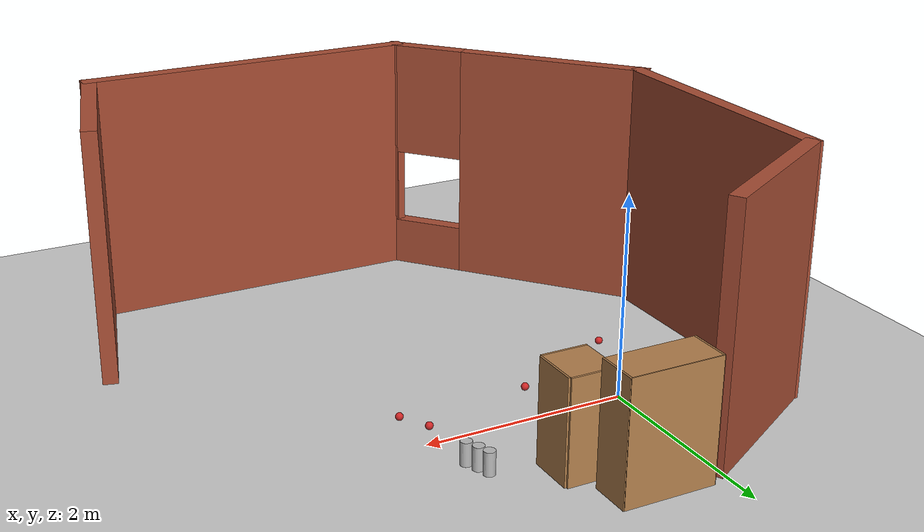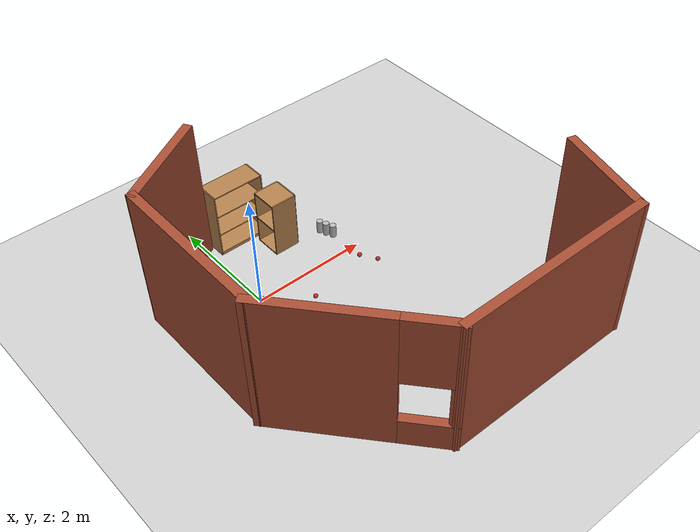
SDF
<sdf version="1.7">
 <world name="default">
  <light name="sun" type="directional">
   <pose>0 0 10 0 -0 0</pose>
   <diffuse>0.8 0.8 0.8 1</diffuse>
   <specular>0.2 0.2 0.2 1</specular>
   <attenuation>
    <range>1000</range>
    <constant>0.9</constant>
    <linear>0.01</linear>
    <quadratic>0.001</quadratic>
   </attenuation>
   <direction>-0.5 0.1 -0.9</direction>
   <spot><inner_angle>0</inner_angle><outer_angle>0</outer_angle><falloff>0</falloff></spot>
  </light>
  <model name="ground_plane">
   <static>1</static>
   <link name="link">
    <collision name="collision">
     <geometry><plane><normal>0 0 1</normal><size>100 100</size></plane></geometry>
     <surface><friction><ode><mu>100</mu><mu2>50</mu2></ode></friction></surface>
    </collision>
    <visual name="visual">
     <cast_shadows>0</cast_shadows>
     <geometry><plane><normal>0 0 1</normal><size>100 100</size></plane></geometry>
     <material>
      <script><uri>file://media/materials/scripts/gazebo.material</uri><name>Gazebo/Grey</name></script>
     </material>
    </visual>
   </link>
  </model>
  <gravity>0 0 -9.8</gravity>
  <magnetic_field>6e-06 2.3e-05 -4.2e-05</magnetic_field>
  <atmosphere type="adiabatic"/>
  <physics type="ode">
   <max_step_size>0.001</max_step_size>
   <real_time_factor>1</real_time_factor>
   <real_time_update_rate>1000</real_time_update_rate>
  </physics>
  <scene><ambient>0.4 0.4 0.4 1</ambient><background>0.7 0.7 0.7 1</background><shadows>1</shadows></scene>
  <audio><device>default</device></audio>
  <spherical_coordinates>
   <surface_model>EARTH_WGS84</surface_model>
   <latitude_deg>0</latitude_deg>
   <longitude_deg>0</longitude_deg>
   <elevation>0</elevation>
   <heading_deg>0</heading_deg>
  </spherical_coordinates>
  <model name="cabinet">
   <static>1</static>
   <link name="cabinet_bottom_plate">
    <inertial>
     <pose>0 0 -1 0 -0 0</pose>
     <inertia><ixx>2.05</ixx><ixy>0</ixy><ixz>0</ixz><iyy>2.05</iyy><iyz>0</iyz><izz>2.05</izz></inertia>
     <mass>25</mass>
    </inertial>
    <collision name="cabinet_bottom_plate_geom">
     <pose>0 0 0.01 0 -0 0</pose>
     <geometry><box><size>0.45 0.45 0.02</size></box></geometry>
    </collision>
    <visual name="cabinet_bottom_plate_geom_visual">
     <pose>0 0 0.01 0 -0 0</pose>
     <geometry><box><size>0.45 0.45 0.02</size></box></geometry>
     <material>
      <script><uri>file://media/materials/scripts/gazebo.material</uri><name>Gazebo/Wood</name></script>
     </material>
    </visual>
    <collision name="cabinet_bottom_plate_geom_cabinet_back_plate">
     <pose>0.235 0 0.51 0 -0 0</pose>
     <geometry><box><size>0.02 0.45 1.02</size></box></geometry>
    </collision>
    <visual name="cabinet_bottom_plate_geom_cabinet_back_plate_visual">
     <pose>0.235 0 0.51 0 -0 0</pose>
     <geometry><box><size>0.02 0.45 1.02</size></box></geometry>
     <material>
      <script><uri>file://media/materials/scripts/gazebo.material</uri><name>Gazebo/Wood</name></script>
     </material>
    </visual>
    <collision name="cabinet_bottom_plate_geom_cabinet_left_plate">
     <pose>0 0.235 0.51 0 -0 0</pose>
     <geometry><box><size>0.45 0.02 1.02</size></box></geometry>
    </collision>
    <visual name="cabinet_bottom_plate_geom_cabinet_left_plate_visual">
     <pose>0 0.235 0.51 0 -0 0</pose>
     <geometry><box><size>0.45 0.02 1.02</size></box></geometry>
     <material>
      <script><uri>file://media/materials/scripts/gazebo.material</uri><name>Gazebo/Wood</name></script>
     </material>
    </visual>
    <collision name="cabinet_bottom_plate_geom_cabinet_middle_plate">
     <pose>0 0 0.51 0 -0 0</pose>
     <geometry><box><size>0.45 0.45 0.02</size></box></geometry>
    </collision>
    <visual name="cabinet_bottom_plate_geom_cabinet_middle_plate_visual">
     <pose>0 0 0.51 0 -0 0</pose>
     <geometry><box><size>0.45 0.45 0.02</size></box></geometry>
     <material>
      <script><uri>file://media/materials/scripts/gazebo.material</uri><name>Gazebo/Wood</name></script>
     </material>
    </visual>
    <collision name="cabinet_bottom_plate_geom_cabinet_right_plate">
     <pose>0 -0.235 0.51 0 -0 0</pose>
     <geometry><box><size>0.45 0.02 1.02</size></box></geometry>
    </collision>
    <visual name="cabinet_bottom_plate_geom_cabinet_right_plate_visual">
     <pose>0 -0.235 0.51 0 -0 0</pose>
     <geometry><box><size>0.45 0.02 1.02</size></box></geometry>
     <material>
      <script><uri>file://media/materials/scripts/gazebo.material</uri><name>Gazebo/Wood</name></script>
     </material>
    </visual>
    <collision name="cabinet_bottom_plate_geom_cabinet_top_plate">
     <pose>0 0 1.01 0 -0 0</pose>
     <geometry><box><size>0.45 0.45 0.02</size></box></geometry>
    </collision>
    <visual name="cabinet_bottom_plate_geom_cabinet_top_plate_visual">
     <pose>0 0 1.01 0 -0 0</pose>
     <geometry><box><size>0.45 0.45 0.02</size></box></geometry>
     <material>
      <script><uri>file://media/materials/scripts/gazebo.material</uri><name>Gazebo/Wood</name></script>
     </material>
    </visual>
   </link>
   <pose>1.06291 0.925774 0 0 -0 0</pose>
  </model>
  <model name="beer">
   <link name="link">
    <pose>0 0 0.115 0 -0 0</pose>
    <inertial>
     <mass>0.39</mass>
     <inertia><ixx>0.00058</ixx><ixy>0</ixy><ixz>0</ixz><iyy>0.00058</iyy><iyz>0</iyz><izz>0.00019</izz></inertia>
    </inertial>
    <collision name="collision">
     <geometry><cylinder><radius>0.055</radius><length>0.23</length></cylinder></geometry>
    </collision>
    <visual name="visual">
     <geometry><cylinder><radius>0.055</radius><length>0.23</length></cylinder></geometry>
     <material>
      <script>
       <uri>model://beer/materials/scripts</uri>
       <uri>model://beer/materials/textures</uri>
       <name>Beer/Diffuse</name>
      </script>
     </material>
    </visual>
   </link>
   <pose>1.74827 0.66825 -2e-06 1e-06 -0 -0.079914</pose>
  </model>
  <model name="beer_0">
   <link name="link">
    <pose>0 0 0.115 0 -0 0</pose>
    <inertial>
     <mass>0.39</mass>
     <inertia><ixx>0.00058</ixx><ixy>0</ixy><ixz>0</ixz><iyy>0.00058</iyy><iyz>0</iyz><izz>0.00019</izz></inertia>
    </inertial>
    <collision name="collision">
     <geometry><cylinder><radius>0.055</radius><length>0.23</length></cylinder></geometry>
    </collision>
    <visual name="visual">
     <geometry><cylinder><radius>0.055</radius><length>0.23</length></cylinder></geometry>
     <material>
      <script>
       <uri>model://beer/materials/scripts</uri>
       <uri>model://beer/materials/textures</uri>
       <name>Beer/Diffuse</name>
      </script>
     </material>
    </visual>
   </link>
   <pose>1.79036 0.553471 -7e-06 -1e-06 -0 -1.2e-05</pose>
  </model>
  <model name="beer_1">
   <link name="link">
    <pose>0 0 0.115 0 -0 0</pose>
    <inertial>
     <mass>0.39</mass>
     <inertia><ixx>0.00058</ixx><ixy>0</ixy><ixz>0</ixz><iyy>0.00058</iyy><iyz>0</iyz><izz>0.00019</izz></inertia>
    </inertial>
    <collision name="collision">
     <geometry><cylinder><radius>0.055</radius><length>0.23</length></cylinder></geometry>
    </collision>
    <visual name="visual">
     <geometry><cylinder><radius>0.055</radius><length>0.23</length></cylinder></geometry>
     <material>
      <script>
       <uri>model://beer/materials/scripts</uri>
       <uri>model://beer/materials/textures</uri>
       <name>Beer/Diffuse</name>
      </script>
     </material>
    </visual>
   </link>
   <pose>1.84564 0.437087 -2e-06 1e-06 -0 -1.1e-05</pose>
  </model>
  <model name="my_building">
   <pose>1.33974 -1.24495 0 0 -0 0</pose>
   <link name="Wall_0">
    <collision name="Wall_0_Collision">
     <geometry><box><size>2.75 0.15 2.5</size></box></geometry>
     <pose>0 0 1.25 0 -0 0</pose>
    </collision>
    <visual name="Wall_0_Visual">
     <pose>0 0 1.25 0 -0 0</pose>
     <geometry><box><size>2.75 0.15 2.5</size></box></geometry>
     <material>
      <script><uri>file://media/materials/scripts/gazebo.material</uri><name>Gazebo/Bricks</name></script>
      <ambient>1 1 1 1</ambient>
     </material>
     <meta><layer>0</layer></meta>
    </visual>
    <pose>-2.73382 0.637661 0 0 -0 -1.5708</pose>
   </link>
   <link name="Wall_1">
    <pose>-1.87514 -1.71231 0 0 -0 -0.870664</pose>
    <visual name="Wall_1_Visual_0">
     <pose>-0.43602 0 1.25 0 -0 0</pose>
     <geometry><box><size>2.02384 0.15 2.5</size></box></geometry>
     <material>
      <script><uri>file://media/materials/scripts/gazebo.material</uri><name>Gazebo/Bricks</name></script>
      <ambient>1 1 1 1</ambient>
     </material>
     <meta><layer>0</layer></meta>
    </visual>
    <collision name="Wall_1_Collision_0">
     <geometry><box><size>2.02384 0.15 2.5</size></box></geometry>
     <pose>-0.43602 0 1.25 0 -0 0</pose>
    </collision>
    <visual name="Wall_1_Visual_1">
     <pose>1.01192 0 0.25 0 -0 0</pose>
     <geometry><box><size>0.872041 0.15 0.5</size></box></geometry>
     <material>
      <script><uri>file://media/materials/scripts/gazebo.material</uri><name>Gazebo/Bricks</name></script>
      <ambient>1 1 1 1</ambient>
     </material>
     <meta><layer>0</layer></meta>
    </visual>
    <collision name="Wall_1_Collision_1">
     <geometry><box><size>0.872041 0.15 0.5</size></box></geometry>
     <pose>1.01192 0 0.25 0 -0 0</pose>
    </collision>
    <visual name="Wall_1_Visual_2">
     <pose>1.3825 0 1.5 0 -0 0</pose>
     <geometry><box><size>0.130883 0.15 2</size></box></geometry>
     <material>
      <script><uri>file://media/materials/scripts/gazebo.material</uri><name>Gazebo/Bricks</name></script>
      <ambient>1 1 1 1</ambient>
     </material>
     <meta><layer>0</layer></meta>
    </visual>
    <collision name="Wall_1_Collision_2">
     <geometry><box><size>0.130883 0.15 2</size></box></geometry>
     <pose>1.3825 0 1.5 0 -0 0</pose>
    </collision>
    <visual name="Wall_1_Visual_3">
     <pose>0.94648 0 1.9 0 -0 0</pose>
     <geometry><box><size>0.741158 0.15 1.2</size></box></geometry>
     <material>
      <script><uri>file://media/materials/scripts/gazebo.material</uri><name>Gazebo/Bricks</name></script>
      <ambient>1 1 1 1</ambient>
     </material>
     <meta><layer>0</layer></meta>
    </visual>
    <collision name="Wall_1_Collision_3">
     <geometry><box><size>0.741158 0.15 1.2</size></box></geometry>
     <pose>0.94648 0 1.9 0 -0 0</pose>
    </collision>
   </link>
   <link name="Wall_3">
    <collision name="Wall_3_Collision">
     <geometry><box><size>1.75 0.15 2.5</size></box></geometry>
     <pose>0 0 1.25 0 -0 0</pose>
    </collision>
    <visual name="Wall_3_Visual">
     <pose>0 0 1.25 0 -0 0</pose>
     <geometry><box><size>1.75 0.15 2.5</size></box></geometry>
     <material>
      <script><uri>file://media/materials/scripts/gazebo.material</uri><name>Gazebo/Bricks</name></script>
      <ambient>1 1 1 1</ambient>
     </material>
     <meta><layer>0</layer></meta>
    </visual>
    <pose>-2.0164 2.3655 0 0 -0 0.523599</pose>
   </link>
   <link name="Wall_5">
    <collision name="Wall_5_Collision">
     <geometry><box><size>3.5 0.15 2.5</size></box></geometry>
     <pose>0 0 1.25 0 -0 0</pose>
    </collision>
    <visual name="Wall_5_Visual">
     <pose>0 0 1.25 0 -0 0</pose>
     <geometry><box><size>3.5 0.15 2.5</size></box></geometry>
     <material>
      <script><uri>file://media/materials/scripts/gazebo.material</uri><name>Gazebo/Bricks</name></script>
      <ambient>1 1 1 1</ambient>
     </material>
     <meta><layer>0</layer></meta>
    </visual>
    <pose>0.68447 -2.76227 0 0 -0 0</pose>
   </link>
   <link name="Wall_6">
    <collision name="Wall_6_Collision">
     <geometry><box><size>1.75 0.15 2.5</size></box></geometry>
     <pose>0 0 1.25 0 -0 0</pose>
    </collision>
    <visual name="Wall_6_Visual">
     <pose>0 0 1.25 0 -0 0</pose>
     <geometry><box><size>1.75 0.15 2.5</size></box></geometry>
     <material>
      <script><uri>file://media/materials/scripts/gazebo.material</uri><name>Gazebo/Bricks</name></script>
      <ambient>1 1 1 1</ambient>
     </material>
     <meta><layer>0</layer></meta>
    </visual>
    <pose>2.56652 -1.98953 0 0 -0 1.309</pose>
   </link>
   <static>1</static>
  </model>
  <model name="bookshelf">
   <static>1</static>
   <link name="link">
    <inertial><mass>1</mass></inertial>
    <collision name="back">
     <pose>0 0.005 0.6 0 -0 0</pose>
     <geometry><box><size>0.9 0.01 1.2</size></box></geometry>
    </collision>
    <visual name="visual1">
     <pose>0 0.005 0.6 0 -0 0</pose>
     <geometry><box><size>0.9 0.01 1.2</size></box></geometry>
     <material>
      <script><uri>file://media/materials/scripts/gazebo.material</uri><name>Gazebo/Wood</name></script>
     </material>
    </visual>
    <collision name="left_side">
     <pose>0.45 -0.195 0.6 0 -0 0</pose>
     <geometry><box><size>0.02 0.4 1.2</size></box></geometry>
    </collision>
    <visual name="visual2">
     <pose>0.45 -0.195 0.6 0 -0 0</pose>
     <geometry><box><size>0.02 0.4 1.2</size></box></geometry>
     <material>
      <script><uri>file://media/materials/scripts/gazebo.material</uri><name>Gazebo/Wood</name></script>
     </material>
    </visual>
    <collision name="right_side">
     <pose>-0.45 -0.195 0.6 0 -0 0</pose>
     <geometry><box><size>0.02 0.4 1.2</size></box></geometry>
    </collision>
    <visual name="visual3">
     <pose>-0.45 -0.195 0.6 0 -0 0</pose>
     <geometry><box><size>0.02 0.4 1.2</size></box></geometry>
     <material>
      <script><uri>file://media/materials/scripts/gazebo.material</uri><name>Gazebo/Wood</name></script>
     </material>
    </visual>
    <collision name="bottom">
     <pose>0 -0.195 0.03 0 -0 0</pose>
     <geometry><box><size>0.88 0.4 0.06</size></box></geometry>
    </collision>
    <visual name="visual4">
     <pose>0 -0.195 0.03 0 -0 0</pose>
     <geometry><box><size>0.88 0.4 0.06</size></box></geometry>
     <material>
      <script><uri>file://media/materials/scripts/gazebo.material</uri><name>Gazebo/Wood</name></script>
     </material>
    </visual>
    <collision name="top">
     <pose>0 -0.195 1.19 0 -0 0</pose>
     <geometry><box><size>0.88 0.4 0.02</size></box></geometry>
    </collision>
    <visual name="visual5">
     <pose>0 -0.195 1.19 0 -0 0</pose>
     <geometry><box><size>0.88 0.4 0.02</size></box></geometry>
     <material>
      <script><uri>file://media/materials/scripts/gazebo.material</uri><name>Gazebo/Wood</name></script>
     </material>
    </visual>
    <collision name="low_shelf">
     <pose>0 -0.195 0.43 0 -0 0</pose>
     <geometry><box><size>0.88 0.4 0.02</size></box></geometry>
    </collision>
    <visual name="visual6">
     <pose>0 -0.195 0.43 0 -0 0</pose>
     <geometry><box><size>0.88 0.4 0.02</size></box></geometry>
     <material>
      <script><uri>file://media/materials/scripts/gazebo.material</uri><name>Gazebo/Wood</name></script>
     </material>
    </visual>
    <collision name="high_shelf">
     <pose>0 -0.195 0.8 0 -0 0</pose>
     <geometry><box><size>0.88 0.4 0.02</size></box></geometry>
    </collision>
    <visual name="visual7">
     <pose>0 -0.195 0.8 0 -0 0</pose>
     <geometry><box><size>0.88 0.4 0.02</size></box></geometry>
     <material>
      <script><uri>file://media/materials/scripts/gazebo.material</uri><name>Gazebo/Wood</name></script>
     </material>
    </visual>
   </link>
   <pose>0.613148 1.66237 0 0 -0 0</pose>
  </model>
  <model name="cricket_ball">
   <link name="link">
    <pose>0 0 0.0375 0 -0 0</pose>
    <inertial>
     <mass>0.1467</mass>
     <inertia>
      <ixx>8.25187e-05</ixx>
      <ixy>0</ixy>
      <ixz>0</ixz>
      <iyy>8.25187e-05</iyy>
      <iyz>0</iyz>
      <izz>8.25187e-05</izz>
     </inertia>
    </inertial>
    <collision name="collision">
     <geometry><sphere><radius>0.0375</radius></sphere></geometry>
     <surface>
      <contact>
       <poissons_ratio>0.347</poissons_ratio>
       <elastic_modulus>8.8e+09</elastic_modulus>
       <ode><kp>100000</kp><kd>100</kd><max_vel>100</max_vel><min_depth>0.001</min_depth></ode>
      </contact>
      <friction>
       <torsional>
        <coefficient>1</coefficient>
        <use_patch_radius>0</use_patch_radius>
        <surface_radius>0.01</surface_radius>
       </torsional>
      </friction>
     </surface>
    </collision>
    <visual name="visual">
     <geometry><sphere><radius>0.0375</radius></sphere></geometry>
     <material>
      <script><uri>file://media/materials/scripts/gazebo.material</uri><name>Gazebo/Red</name></script>
     </material>
    </visual>
    <velocity_decay><linear>0</linear><angular>0.005</angular></velocity_decay>
   </link>
   <pose>2.00917 -0.521296 -0.001014 0 -0 0</pose>
  </model>
  <model name="cricket_ball_0">
   <link name="link">
    <pose>0 0 0.0375 0 -0 0</pose>
    <inertial>
     <mass>0.1467</mass>
     <inertia>
      <ixx>8.25187e-05</ixx>
      <ixy>0</ixy>
      <ixz>0</ixz>
      <iyy>8.25187e-05</iyy>
      <iyz>0</iyz>
      <izz>8.25187e-05</izz>
     </inertia>
    </inertial>
    <collision name="collision">
     <geometry><sphere><radius>0.0375</radius></sphere></geometry>
     <surface>
      <contact>
       <poissons_ratio>0.347</poissons_ratio>
       <elastic_modulus>8.8e+09</elastic_modulus>
       <ode><kp>100000</kp><kd>100</kd><max_vel>100</max_vel><min_depth>0.001</min_depth></ode>
      </contact>
      <friction>
       <torsional>
        <coefficient>1</coefficient>
        <use_patch_radius>0</use_patch_radius>
        <surface_radius>0.01</surface_radius>
       </torsional>
      </friction>
     </surface>
    </collision>
    <visual name="visual">
     <geometry><sphere><radius>0.0375</radius></sphere></geometry>
     <material>
      <script><uri>file://media/materials/scripts/gazebo.material</uri><name>Gazebo/Red</name></script>
     </material>
    </visual>
    <velocity_decay><linear>0</linear><angular>0.005</angular></velocity_decay>
   </link>
   <pose>1.84531 -0.249887 -0.001014 0 -0 0</pose>
  </model>
  <model name="cricket_ball_1">
   <link name="link">
    <pose>0 0 0.0375 0 -0 0</pose>
    <inertial>
     <mass>0.1467</mass>
     <inertia>
      <ixx>8.25187e-05</ixx>
      <ixy>0</ixy>
      <ixz>0</ixz>
      <iyy>8.25187e-05</iyy>
      <iyz>0</iyz>
      <izz>8.25187e-05</izz>
     </inertia>
    </inertial>
    <collision name="collision">
     <geometry><sphere><radius>0.0375</radius></sphere></geometry>
     <surface>
      <contact>
       <poissons_ratio>0.347</poissons_ratio>
       <elastic_modulus>8.8e+09</elastic_modulus>
       <ode><kp>100000</kp><kd>100</kd><max_vel>100</max_vel><min_depth>0.001</min_depth></ode>
      </contact>
      <friction>
       <torsional>
        <coefficient>1</coefficient>
        <use_patch_radius>0</use_patch_radius>
        <surface_radius>0.01</surface_radius>
       </torsional>
      </friction>
     </surface>
    </collision>
    <visual name="visual">
     <geometry><sphere><radius>0.0375</radius></sphere></geometry>
     <material>
      <script><uri>file://media/materials/scripts/gazebo.material</uri><name>Gazebo/Red</name></script>
     </material>
    </visual>
    <velocity_decay><linear>0</linear><angular>0.005</angular></velocity_decay>
   </link>
   <pose>0.7036 -0.514345 -0.001014 0 -0 0</pose>
  </model>
  <model name="cricket_ball_2">
   <link name="link">
    <pose>0 0 0.0375 0 -0 0</pose>
    <inertial>
     <mass>0.1467</mass>
     <inertia>
      <ixx>8.25187e-05</ixx>
      <ixy>0</ixy>
      <ixz>0</ixz>
      <iyy>8.25187e-05</iyy>
      <iyz>0</iyz>
      <izz>8.25187e-05</izz>
     </inertia>
    </inertial>
    <collision name="collision">
     <geometry><sphere><radius>0.0375</radius></sphere></geometry>
     <surface>
      <contact>
       <poissons_ratio>0.347</poissons_ratio>
       <elastic_modulus>8.8e+09</elastic_modulus>
       <ode><kp>100000</kp><kd>100</kd><max_vel>100</max_vel><min_depth>0.001</min_depth></ode>
      </contact>
      <friction>
       <torsional>
        <coefficient>1</coefficient>
        <use_patch_radius>0</use_patch_radius>
        <surface_radius>0.01</surface_radius>
       </torsional>
      </friction>
     </surface>
    </collision>
    <visual name="visual">
     <geometry><sphere><radius>0.0375</radius></sphere></geometry>
     <material>
      <script><uri>file://media/materials/scripts/gazebo.material</uri><name>Gazebo/Red</name></script>
     </material>
    </visual>
    <velocity_decay><linear>0</linear><angular>0.005</angular></velocity_decay>
   </link>
   <pose>-0.460731 -1.04112 -0.001014 0 -0 0</pose>
  </model>
 </world>
</sdf>
